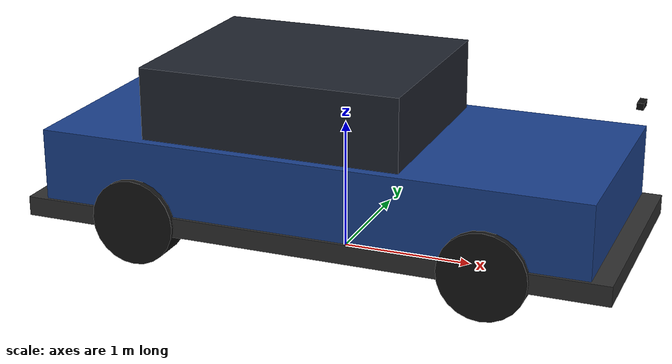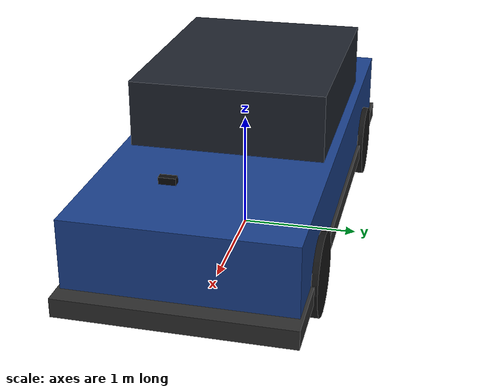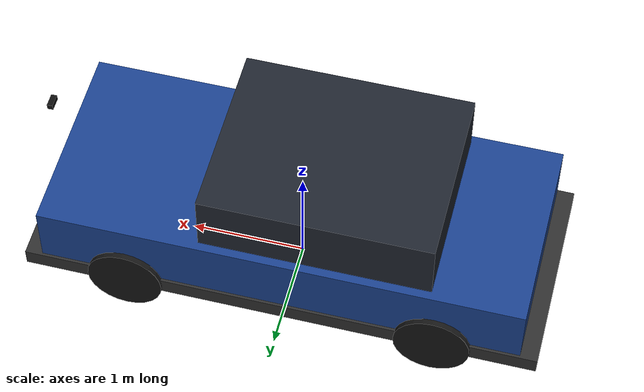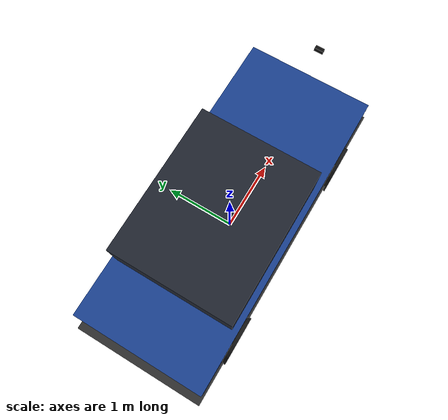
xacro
<?xml version="1.0"?>
<robot xmlns:xacro="http://www.ros.org/wiki/xacro" name="sedan">

    <!-- ===================== PHYSICAL PARAMETERS ===================== -->
    <xacro:property name="wheelbase" value="2.7" />
    <xacro:property name="track_width" value="1.6" />
    <xacro:property name="wheel_radius" value="0.33" />
    <xacro:property name="wheel_width" value="0.25" />

    <xacro:property name="ch_l" value="4.5" />
    <xacro:property name="ch_w" value="1.8" />
    <xacro:property name="ch_h" value="0.15" />
    <xacro:property name="ch_mass" value="300" />

    <xacro:property name="body_l" value="4.2" />
    <xacro:property name="body_w" value="1.75" />
    <xacro:property name="body_h" value="0.55" />

    <xacro:property name="cabin_l" value="2.0" />
    <xacro:property name="cabin_w" value="1.6" />
    <xacro:property name="cabin_h" value="0.55" />

    <xacro:property name="steer_mass" value="5.0" />
    <xacro:property name="wheel_mass" value="15.0" />

    <xacro:property name="cam_x" value="2.2" />
    <xacro:property name="cam_z" value="1.4" />
    <xacro:property name="cam_pitch" value="0.06" />

    <xacro:arg name="lidar" default="false" />
    <xacro:property name="lidar_x" value="2.30" />
    <xacro:property name="lidar_z" value="0.60" />
    <xacro:property name="lidar_hfov" value="2.0944" />
    <xacro:property name="lidar_hsamples" value="480" />
    <xacro:property name="lidar_vhalf" value="0.1745" />
    <xacro:property name="lidar_channels" value="16" />
    <xacro:property name="lidar_rate" value="10" />
    <xacro:property name="lidar_noise_m" value="0.02" />

    <!-- ===================== INERTIA MACROS ===================== -->
    <xacro:macro name="box_inertia" params="m x y z">
        <inertial>
            <mass value="${m}" />
            <inertia ixx="${m*(y*y+z*z)/12}" ixy="0" ixz="0"
                iyy="${m*(x*x+z*z)/12}" iyz="0"
                izz="${m*(x*x+y*y)/12}" />
        </inertial>
    </xacro:macro>

    <xacro:macro name="cyl_inertia" params="m r h">
        <inertial>
            <mass value="${m}" />
            <inertia ixx="${m*(3*r*r+h*h)/12}" ixy="0" ixz="0"
                iyy="${m*(3*r*r+h*h)/12}" iyz="0"
                izz="${m*r*r/2}" />
        </inertial>
    </xacro:macro>

    <!-- ===================== BASE LINK ===================== -->
    <link name="base_link" />

    <!-- ===================== CHASSIS ===================== -->
    <joint name="chassis_joint" type="fixed">
        <parent link="base_link" />
        <child link="chassis" />
        <origin xyz="0 0 ${wheel_radius}" rpy="0 0 0" />
    </joint>

    <link name="chassis">
        <!-- floor pan -->
        <visual>
            <origin xyz="0 0 0" rpy="0 0 0" />
            <geometry>
                <box size="${ch_l} ${ch_w} ${ch_h}" />
            </geometry>
            <material name="anthracite">
                <color rgba="0.18 0.18 0.18 1.0" />
            </material>
        </visual>
        <!-- body shell -->
        <visual>
            <origin xyz="0 0 ${ch_h/2 + body_h/2}" rpy="0 0 0" />
            <geometry>
                <box size="${body_l} ${body_w} ${body_h}" />
            </geometry>
            <material name="sedan_blue">
                <color rgba="0.10 0.25 0.55 1.0" />
            </material>
        </visual>
        <!-- cabin / greenhouse -->
        <visual>
            <origin xyz="-0.3 0 ${ch_h/2 + body_h + cabin_h/2}" rpy="0 0 0" />
            <geometry>
                <box size="${cabin_l} ${cabin_w} ${cabin_h}" />
            </geometry>
            <material name="glass_dark">
                <color rgba="0.12 0.14 0.18 1.0" />
            </material>
        </visual>

        <collision>
            <origin xyz="0 0 ${ch_h/2 + body_h/2}" rpy="0 0 0" />
            <geometry>
                <box size="${ch_l} ${ch_w} ${ch_h + body_h}" />
            </geometry>
        </collision>

        <xacro:box_inertia m="${ch_mass}" x="${ch_l}" y="${ch_w}" z="${ch_h + body_h}" />
    </link>

    <!-- ===================== STEERING LINK MACRO ===================== -->
    <xacro:macro name="steering_link" params="prefix x_off y_off">
        <joint name="${prefix}_wheel_steering_joint" type="revolute">
            <parent link="chassis" />
            <child link="${prefix}_wheel_steering_link" />
            <origin xyz="${x_off} ${y_off} 0" rpy="0 0 0" />
            <axis xyz="0 0 1" />
            <limit lower="-0.80" upper="0.80" effort="400.0" velocity="4.0" />
            <dynamics damping="0.0" />
        </joint>

        <link name="${prefix}_wheel_steering_link">
            <visual>
                <origin xyz="0 0 0" rpy="0 0 0" />
                <geometry>
                    <cylinder radius="0.03" length="0.12" />
                </geometry>
                <material name="silver">
                    <color rgba="0.75 0.75 0.75 1.0" />
                </material>
            </visual>
            <inertial>
                <mass value="${steer_mass}" />
                <inertia ixx="0.01" ixy="0" ixz="0"
                    iyy="0.01" iyz="0"
                    izz="0.01" />
            </inertial>
        </link>
    </xacro:macro>

    <!-- ===================== WHEEL MACRO ===================== -->
    <xacro:macro name="wheel" params="name parent x_off y_off z_off">
        <joint name="${name}_joint" type="continuous">
            <parent link="${parent}" />
            <child link="${name}" />
            <origin xyz="${x_off} ${y_off} ${z_off}" rpy="0 0 0" />
            <axis xyz="0 1 0" />
        </joint>

        <link name="${name}">
            <visual>
                <origin xyz="0 0 0" rpy="${pi/2} 0 0" />
                <geometry>
                    <cylinder radius="${wheel_radius}" length="${wheel_width}" />
                </geometry>
                <material name="tyre">
                    <color rgba="0.08 0.08 0.08 1.0" />
                </material>
            </visual>
            <collision>
                <origin xyz="0 0 0" rpy="${pi/2} 0 0" />
                <geometry>
                    <cylinder radius="${wheel_radius}" length="${wheel_width}" />
                </geometry>
            </collision>
            <xacro:cyl_inertia m="${wheel_mass}" r="${wheel_radius}" h="${wheel_width}" />
        </link>
    </xacro:macro>

    <!-- ===================== INSTANTIATE ===================== -->
    <xacro:steering_link prefix="front_left" x_off="${wheelbase/2}" y_off="${track_width/2}" />
    <xacro:steering_link prefix="front_right" x_off="${wheelbase/2}" y_off="${-track_width/2}" />

    <xacro:wheel name="front_left_wheel"
        parent="front_left_wheel_steering_link" x_off="0" y_off="0" z_off="0" />
    <xacro:wheel name="front_right_wheel"
        parent="front_right_wheel_steering_link" x_off="0" y_off="0" z_off="0" />
    <xacro:wheel name="rear_left_wheel"
        parent="chassis" x_off="${-wheelbase/2}" y_off="${track_width/2}" z_off="0" />
    <xacro:wheel name="rear_right_wheel"
        parent="chassis" x_off="${-wheelbase/2}" y_off="${-track_width/2}" z_off="0" />

    <!-- ===================== WHEEL FRICTION (slip1/slip2) ===================== -->
    <xacro:macro name="wheel_friction" params="link slip:=0.00">
        <gazebo reference="${link}">
            <collision>
                <surface>
                    <friction>
                        <ode>
                            <mu>1.0</mu>
                            <mu2>1.0</mu2>
                            <slip1>${slip}</slip1>
                            <slip2>${slip}</slip2>
                        </ode>
                    </friction>
                </surface>
            </collision>
        </gazebo>
    </xacro:macro>
    <xacro:wheel_friction link="front_left_wheel" />
    <xacro:wheel_friction link="front_right_wheel" />
    <xacro:wheel_friction link="rear_left_wheel" />
    <xacro:wheel_friction link="rear_right_wheel" />

    <!-- ===================== FRONT CAMERA ===================== -->
    <joint name="front_camera_joint" type="fixed">
        <parent link="chassis" />
        <child link="front_camera_link" />
        <origin xyz="${cam_x} 0 ${cam_z - wheel_radius}" rpy="0 ${cam_pitch} 0" />
    </joint>

    <link name="front_camera_link">
        <visual>
            <origin xyz="0 0 0" rpy="0 0 0" />
            <geometry>
                <box size="0.05 0.12 0.05" />
            </geometry>
            <material name="lens">
                <color rgba="0.05 0.05 0.05 1.0" />
            </material>
        </visual>
        <inertial>
            <mass value="0.2" />
            <inertia ixx="0.0001" ixy="0" ixz="0"
                iyy="0.0001" iyz="0"
                izz="0.0001" />
        </inertial>
    </link>

    <joint name="front_camera_optical_joint" type="fixed">
        <parent link="front_camera_link" />
        <child link="front_camera_optical_frame" />
        <origin xyz="0 0 0" rpy="${-pi/2} 0 ${-pi/2}" />
    </joint>
    <link name="front_camera_optical_frame" />

    <!-- ===================== GAZEBO: ACKERMANN STEERING ===================== -->
    <gazebo>
        <plugin filename="ignition-gazebo-ackermann-steering-system"
            name="ignition::gazebo::systems::AckermannSteering">
            <left_joint>rear_left_wheel_joint</left_joint>
            <right_joint>rear_right_wheel_joint</right_joint>
            <left_steering_joint>front_left_wheel_steering_joint</left_steering_joint>
            <right_steering_joint>front_right_wheel_steering_joint</right_steering_joint>
            <kingpin_width>${track_width}</kingpin_width>
            <steering_limit>0.65</steering_limit>
            <wheel_base>${wheelbase}</wheel_base>
            <wheel_separation>${track_width}</wheel_separation>
            <wheel_radius>${wheel_radius}</wheel_radius>
            <min_velocity>-3.0</min_velocity>
            <max_velocity>10.0</max_velocity>
            <min_acceleration>-6.0</min_acceleration>
            <max_acceleration>4.0</max_acceleration>
            <odom_publish_frequency>50</odom_publish_frequency>
            <frame_id>odom</frame_id>
            <child_frame_id>base_link</child_frame_id>
            <odom_topic>/model/sedan/odometry</odom_topic>
            <tf_topic>/model/sedan/tf</tf_topic>
        </plugin>
    </gazebo>

    <!-- ===================== IMU ===================== -->
    <joint name="imu_joint" type="fixed">
        <parent link="chassis" />
        <child link="imu_link" />
        <origin xyz="0 0 0" rpy="0 0 0" />
    </joint>
    <link name="imu_link">
        <inertial>
            <mass value="0.01" />
            <inertia ixx="1e-6" ixy="0" ixz="0" iyy="1e-6" iyz="0" izz="1e-6" />
        </inertial>
    </link>

    <gazebo reference="imu_link">
        <sensor name="imu_sensor" type="imu">
            <always_on>true</always_on>
            <update_rate>100</update_rate>
            <topic>imu</topic>
            <ignition_frame_id>imu_link</ignition_frame_id>
            <imu>
                <angular_velocity>
                    <x>
                        <noise type="gaussian">
                            <mean>0.0</mean>
                            <stddev>0.009</stddev>
                            <bias_mean>0.0</bias_mean>
                            <bias_stddev>0.0004</bias_stddev>
                        </noise>
                    </x>
                    <y>
                        <noise type="gaussian">
                            <mean>0.0</mean>
                            <stddev>0.009</stddev>
                            <bias_mean>0.0</bias_mean>
                            <bias_stddev>0.0004</bias_stddev>
                        </noise>
                    </y>
                    <z>
                        <noise type="gaussian">
                            <mean>0.0</mean>
                            <stddev>0.009</stddev>
                            <bias_mean>0.0</bias_mean>
                            <bias_stddev>0.0004</bias_stddev>
                        </noise>
                    </z>
                </angular_velocity>
                <linear_acceleration>
                    <x>
                        <noise type="gaussian">
                            <mean>0.0</mean>
                            <stddev>0.08</stddev>
                            <bias_mean>0.0</bias_mean>
                            <bias_stddev>0.005</bias_stddev>
                        </noise>
                    </x>
                    <y>
                        <noise type="gaussian">
                            <mean>0.0</mean>
                            <stddev>0.08</stddev>
                            <bias_mean>0.0</bias_mean>
                            <bias_stddev>0.005</bias_stddev>
                        </noise>
                    </y>
                    <z>
                        <noise type="gaussian">
                            <mean>0.0</mean>
                            <stddev>0.08</stddev>
                            <bias_mean>0.0</bias_mean>
                            <bias_stddev>0.005</bias_stddev>
                        </noise>
                    </z>
                </linear_acceleration>
            </imu>
        </sensor>
    </gazebo>

    <!-- ===================== GAZEBO: GROUND-TRUTH ODOMETRY ===================== -->
    <gazebo>
        <plugin filename="ignition-gazebo-odometry-publisher-system"
            name="ignition::gazebo::systems::OdometryPublisher">
            <dimensions>2</dimensions>
            <odom_frame>odom</odom_frame>
            <robot_base_frame>base_link</robot_base_frame>
            <odom_publish_frequency>50</odom_publish_frequency>
            <odom_topic>/model/sedan/odometry_truth</odom_topic>
            <tf_topic>/model/sedan/tf_truth</tf_topic>
        </plugin>
    </gazebo>

    <!-- ===================== GAZEBO: RGB-D CAMERA ===================== -->
    <!-- 640x360 @10 Hz, HFOV 1.6 (day-02 spike NOT run — conservative default;
       848x480 is the upgrade candidate). far=50 m: day-11 obstacle range
       needs >= 40 m (v1 was 15!). -->
    <gazebo reference="front_camera_link">
        <sensor name="front_camera" type="rgbd_camera">
            <always_on>true</always_on>
            <update_rate>10</update_rate>
            <camera>
                <horizontal_fov>1.9</horizontal_fov>
                <image>
                    <width>424</width>
                    <height>300</height>
                    <format>R8G8B8</format>
                </image>
                <clip>
                    <near>0.3</near>
                    <far>50.0</far>
                </clip>
                <depth_camera>
                    <output>depths</output>
                </depth_camera>
            </camera>
            <topic>camera/front</topic>
            <ignition_frame_id>front_camera_optical_frame</ignition_frame_id>
        </sensor>
    </gazebo>

    <!-- ===================== FRONT LIDAR (optional) ===================== -->
    <xacro:if value="$(arg lidar)">
        <joint name="front_lidar_joint" type="fixed">
            <parent link="chassis" />
            <child link="front_lidar_link" />
            <origin xyz="${lidar_x} 0 ${lidar_z - wheel_radius}" rpy="0 0 0" />
        </joint>

        <link name="front_lidar_link">
            <visual>
                <geometry>
                    <box size="0.06 0.10 0.06" />
                </geometry>
                <material name="lidar_housing">
                    <color rgba="0.1 0.1 0.1 1.0" />
                </material>
            </visual>
            <inertial>
                <mass value="0.3" />
                <inertia ixx="0.0001" ixy="0" ixz="0" iyy="0.0001" iyz="0" izz="0.0001" />
            </inertial>
        </link>

        <gazebo reference="front_lidar_link">
            <sensor name="front_lidar" type="gpu_lidar">
                <always_on>true</always_on>
                <update_rate>${lidar_rate}</update_rate>
                <topic>lidar/front</topic>
                <!-- frame_id of the published cloud; robot_state_publisher has
                     this link, so RViz can draw the cloud without extra TF -->
                <ignition_frame_id>front_lidar_link</ignition_frame_id>
                <lidar>
                    <scan>
                        <horizontal>
                            <samples>${lidar_hsamples}</samples>
                            <resolution>1</resolution>
                            <min_angle>${-lidar_hfov / 2}</min_angle>
                            <max_angle>${lidar_hfov / 2}</max_angle>
                        </horizontal>
                        <vertical>
                            <samples>${lidar_channels}</samples>
                            <resolution>1</resolution>
                            <min_angle>${-lidar_vhalf}</min_angle>
                            <max_angle>${lidar_vhalf}</max_angle>
                        </vertical>
                    </scan>
                    <range>
                        <min>0.10</min>
                        <max>60.0</max>
                        <resolution>0.01</resolution>
                    </range>
                    <noise>
                        <type>gaussian</type>
                        <mean>0.0</mean>
                        <stddev>${lidar_noise_m}</stddev>
                    </noise>
                </lidar>
            </sensor>
        </gazebo>
    </xacro:if>

    <!-- ===================== GAZEBO: JOINT STATE PUBLISHER ===================== -->
    <gazebo>
        <plugin filename="ignition-gazebo-joint-state-publisher-system"
            name="ignition::gazebo::systems::JointStatePublisher" />
    </gazebo>

</robot>
